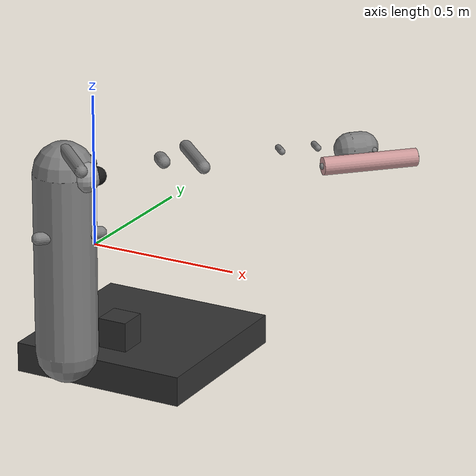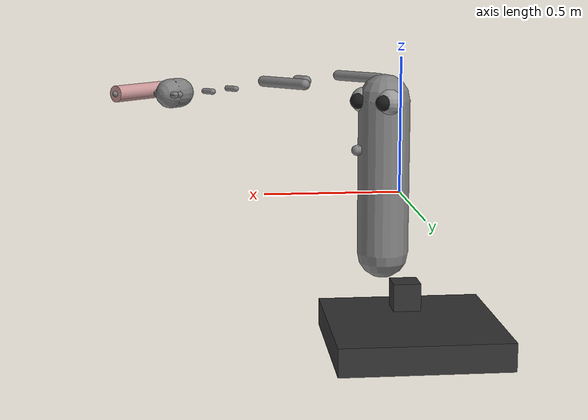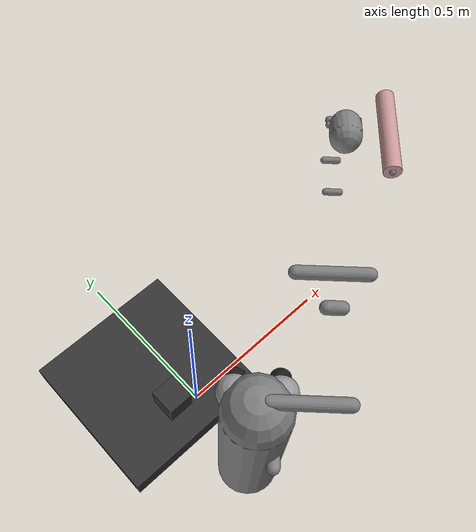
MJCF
<mujoco model="baxterarm3d">

    <compiler inertiafromgeom="true" angle="radian" coordinate="local" />
    <option timestep="0.01" gravity="0 0 0" iterations="20" integrator="RK4" />
    <default>
        <joint armature="0.04" damping="1" limited="true" />
        <geom friction=".5 .1 .1" margin="0.002" condim="1" contype="0" conaffinity="0" />
    </default>

    <worldbody>
        <light diffuse=".5 .5 .5" pos="0 0 3" dir="0 0 -1"/>
        <body name="right_arm_mount" pos="0.024645 -0.219645 0.118588" quat="0.923879 0 0 -0.382684">
            <geom name="e1" type="sphere" rgba="0.6 0.6 0.6 1" pos="-0.06 0.05 0.2" size="0.05" />
            <geom name="e2" type="sphere" rgba="0.6 0.6 0.6 1" pos=" 0.06 0.05 0.2" size="0.05" />
            <geom name="e1p" type="sphere" rgba="0.1 0.1 0.1 1" pos="-0.06 0.09 0.2" size="0.03" />
            <geom name="e2p" type="sphere" rgba="0.1 0.1 0.1 1" pos=" 0.06 0.09 0.2" size="0.03" />
            <geom name="sp" type="capsule" fromto="0 0 -0.4 0 0 0.2" size="0.1" />
            <joint name="right_s0" type="hinge" limited="true" pos="0 0 0" axis="0 0 1" range="-1.70168 1.70168"/>

            <body name="right_upper_shoulder" pos="0.055695 0 0.011038">
                <geom name="sl" type="capsule" fromto="0 -0.1 0 0 0.1 0" size="0.02" />
                <joint name="right_s1" type="hinge" limited="true" pos="0 0 0" axis="0 0 1" range="-2.147 1.047"/>

                <body name="right_lower_shoulder" pos="0.069 0 0.27035" quat="0.707107 -0.707107 0 0">
                    <geom name="uar" type="capsule" fromto="-0.1 0 0 0.1 0 0" size="0.02" />
                    <joint name="right_e0" type="hinge" limited="true" pos="0 0 0" axis="0 0 1" range="-3.05418 3.05418"/>

                    <body name="right_lower_elbow" pos="0.069 0 0.26242" quat="0.5 -0.5 -0.5 -0.5">
                        <geom name="ef" type="capsule" fromto="0 -0.02 0 0.0 0.02 0" size="0.02" />
                        <joint name="right_e1" type="hinge" limited="true" pos="0 0 0" axis="0 0 1" range="-0.05 2.618"/>

                        <body name="right_upper_forearm" pos="0.10359 0 0" quat="0.5 0.5 0.5 0.5">
                            <geom name="fr" type="capsule" fromto="-0.1 0 0 0.1 0 0" size="0.02" />
                            <joint name="right_w0" type="hinge" limited="true" pos="0 0 0" axis="0 0 1" range="-3.059 3.059"/>

                            <body name="right_lower_forearm" pos="0.01 0 0.2707" quat="0.5 -0.5 -0.5 -0.5">
                                <geom name="wf" type="capsule" fromto="0 -0.02 0 0 0.02 0" size="0.01" />
                                <joint name="right_w1" type="hinge" limited="true" pos="0 0 0" axis="0 0 1" range="-1.5708 2.094"/>

                                <body name="right_wrist" pos="0.115975 0 0" quat="0.5 0.5 0.5 0.5">
                                    <geom name="wr" type="capsule" fromto="-0.02 0 0 0.02 0 0" size="0.01" />
                                    <joint name="right_w2" type="hinge" limited="true" pos="0 0 0" axis="0 0 1" range="-3.059 3.059"/>

                                    <body name="right_hand" pos="0 0 0.11355">
                                        <geom name="pl" type="capsule" fromto="0.05 0 -0.02 0.05 0 0.02" size="0.05" />

                                        <body name="r_gripper_tool_frame" pos="0.18 0 0">
                                            <site name="leg_bottom" pos="0 0 -0.15" size="0.01" />
                                            <site name="leg_top" pos="0 0 0.15" size="0.01" />

                                            <body name="ball" pos="0 0 0">
                                                <geom name="ball_geom" rgba="0.8 0.6 0.6 1" type="cylinder" fromto="0 0 -0.15 0 0 0.15" size="0.028" density="2000" contype="2" conaffinity="1" />
                                            </body>
                                        </body>

                                        <body name="right_gripper_base" pos="0 0 0.025">
                                            <geom name="gf3" type="capsule" fromto="0 0 0 0.09137 0.00495 0" size="0.01" />

                                            <body name="r_gripper_l_finger" pos="0 -0.0015 0.02">
                                                <geom name="gf4" type="capsule" fromto="0 0 0 0.09137 0.0 0" size="0.01" />

                                                <body name="r_gripper_l_finger_tip" pos="0 0.01725 0.1127">

                                                </body>
                                            </body>

                                            <body name="r_gripper_r_finger" pos="0 0.0015 0.02">
                                                <geom name="gf5" type="capsule" fromto="0 0 0 0.09137 0.0 0" size="0.01" />

                                                <body name="r_gripper_r_finger_tip" pos="0 -0.01725 0.1127">

                                                </body>
                                            </body>

                                        </body>

                                    </body>
                                </body>
                            </body>
                        </body>
                    </body>
                </body>
            </body>
        </body>

        <body name="w1" pos="0.0 0.15 -0.35">
            <geom name="w1" rgba="0.2 0.2 0.2 1" type="box" size="0.05 0.05 0.05" contype="1" conaffinity="1" />
        </body>

        <body name="w2" pos="0.0 0.3 -0.45">
            <geom name="w2" rgba="0.2 0.2 0.2 1" type="box" size="0.3 0.3 0.05" contype="1" conaffinity="1" />
        </body>

    </worldbody>

    <actuator>
        <motor joint="right_s0" ctrlrange="-100.0 100.0" ctrllimited="true" />
        <motor joint="right_s1" ctrlrange="-100.0 100.0" ctrllimited="true" />
        <motor joint="right_e0" ctrlrange="-100.0 100.0" ctrllimited="true" />
        <motor joint="right_e1" ctrlrange="-100.0 100.0" ctrllimited="true" />
        <motor joint="right_w0" ctrlrange="-100.0 100.0" ctrllimited="true" />
        <motor joint="right_w1" ctrlrange="-100.0 100.0" ctrllimited="true" />
        <motor joint="right_w2" ctrlrange="-100.0 100.0" ctrllimited="true" />
    </actuator>

</mujoco>
